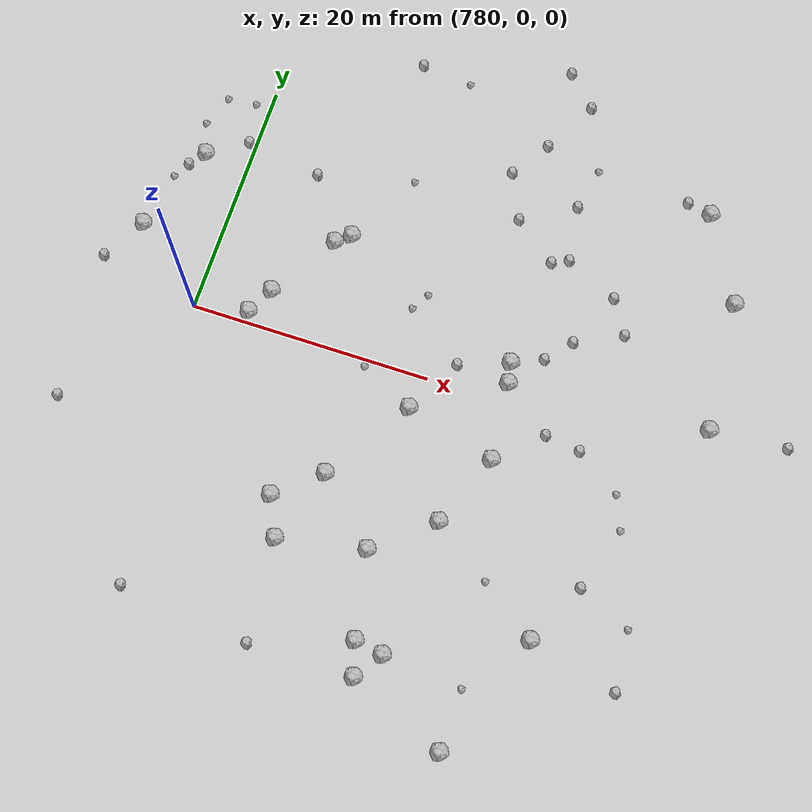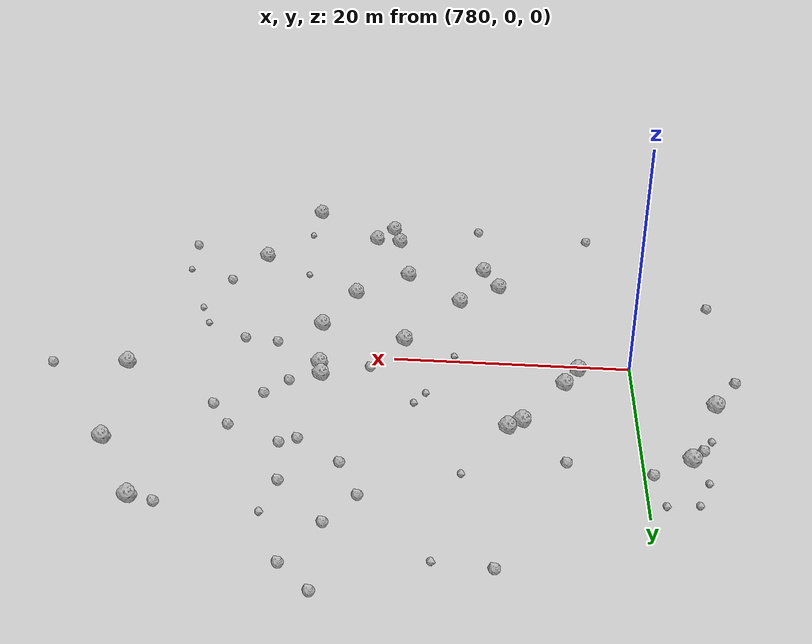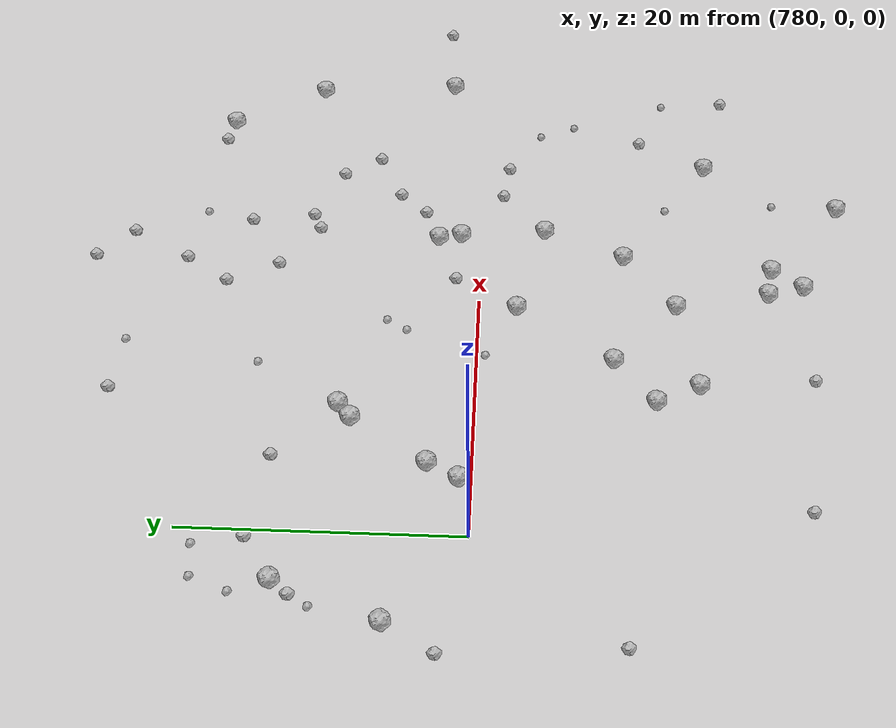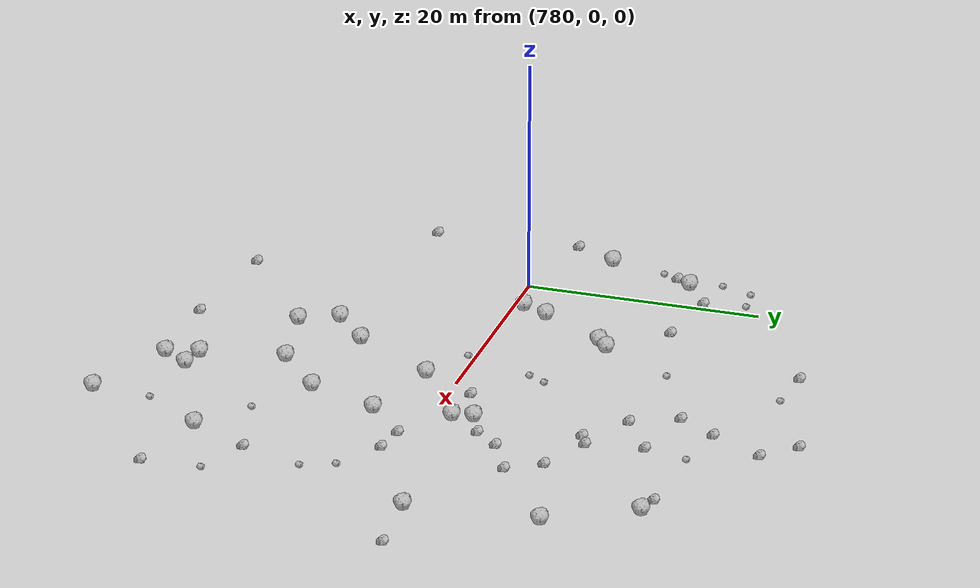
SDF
<sdf version="1.6">
 <world name="default">
  <include><uri>model://sun</uri></include>
  <model name="rock1_20_4">
   <include><uri>model://rock1</uri><pose>806.9239491747359 -4.836882166450049 0.5 0 0 0</pose></include>
  </model>
  <model name="rock1_20_5">
   <include><uri>model://rock1</uri><pose>814.045067868984 -17.55754378425918 0.5 0 0 0</pose></include>
  </model>
  <model name="rock1_20_6">
   <include><uri>model://rock1</uri><pose>794.8095961834971 -9.957706377667574 0.5 0 0 0</pose></include>
  </model>
  <model name="rock1_20_7">
   <include><uri>model://rock1</uri><pose>799.908579996473 -14.72249438884438 0.5 0 0 0</pose></include>
  </model>
  <model name="rock1_20_8">
   <include><uri>model://rock1</uri><pose>821.8094053774981 13.750609710382406 0.5 0 0 0</pose></include>
  </model>
  <model name="rock1_20_9">
   <include><uri>model://rock1</uri><pose>817.8775916085389 20.76920809648854 0.5 0 0 0</pose></include>
  </model>
  <model name="rock1_20_10">
   <include><uri>model://rock1</uri><pose>784.4583957397222 0.9118687274968451 0.5 0 0 0</pose></include>
  </model>
  <model name="rock1_20_11">
   <include><uri>model://rock1</uri><pose>802.0793599631259 -24.4196609240258 0.5 0 0 0</pose></include>
  </model>
  <model name="rock1_20_12">
   <include><uri>model://rock1</uri><pose>799.3915210571026 -2.7966268221333834 0.5 0 0 0</pose></include>
  </model>
  <model name="rock1_20_13">
   <include><uri>model://rock1</uri><pose>804.5135656276066 -10.878079184801251 0.5 0 0 0</pose></include>
  </model>
  <model name="rock1_20_14">
   <include><uri>model://rock1</uri><pose>792.7772760027677 -16.116932879623995 0.5 0 0 0</pose></include>
  </model>
  <model name="rock1_20_15">
   <include><uri>model://rock1</uri><pose>789.14797924716 8.817192618331177 0.5 0 0 0</pose></include>
  </model>
  <model name="rock1_20_16">
   <include><uri>model://rock1</uri><pose>810.0265313238124 -27.745209094083584 0.5 0 0 0</pose></include>
  </model>
  <model name="rock1_20_17">
   <include><uri>model://rock1</uri><pose>790.2927520259299 9.777707889116826 0.5 0 0 0</pose></include>
  </model>
  <model name="rock1_20_18">
   <include><uri>model://rock1</uri><pose>806.3208751578856 1.6259869594494418 0.5 0 0 0</pose></include>
  </model>
  <model name="rock1_20_19">
   <include><uri>model://rock1</uri><pose>801.2969940232844 -21.724144577217224 0.5 0 0 0</pose></include>
  </model>
  <model name="rock1_20_20">
   <include><uri>model://rock1</uri><pose>776.3286090616868 12.989286555198646 0.5 0 0 0</pose></include>
  </model>
  <model name="rock1_20_21">
   <include><uri>model://rock1</uri><pose>791.2919262519025 -12.948505029986304 0.5 0 0 0</pose></include>
  </model>
  <model name="rock1_20_22">
   <include><uri>model://rock1</uri><pose>785.6332726239657 3.193796720892692 0.5 0 0 0</pose></include>
  </model>
  <model name="rock1_20_23">
   <include><uri>model://rock1</uri><pose>805.9833636477401 3.3518292819222424 0.5 0 0 0</pose></include>
  </model>
  <model name="rock1_20_24">
   <include><uri>model://rock1</uri><pose>773.6044967687311 5.477354197778865 0.5 0 0 0</pose></include>
  </model>
  <model name="rock1_20_25">
   <include><uri>model://rock1</uri><pose>822.657518717408 2.8543098349820824 0.5 0 0 0</pose></include>
  </model>
  <model name="rock1_20_26">
   <include><uri>model://rock1</uri><pose>803.6230840872715 -22.13451564689869 0.5 0 0 0</pose></include>
  </model>
  <model name="rock2_20_0">
   <include><uri>model://rock2</uri><pose>821.3460250748253 -19.36565850028717 0.3 0 0 0</pose></include>
  </model>
  <model name="rock2_20_1">
   <include><uri>model://rock2</uri><pose>813.3395093122195 -1.9952434991586152 0.3 0 0 0</pose></include>
  </model>
  <model name="rock2_20_2">
   <include><uri>model://rock2</uri><pose>775.2784571963069 11.683659752080082 0.3 0 0 0</pose></include>
  </model>
  <model name="rock2_20_3">
   <include><uri>model://rock2</uri><pose>807.9306510420062 13.267462382914104 0.3 0 0 0</pose></include>
  </model>
  <model name="rock2_20_4">
   <include><uri>model://rock2</uri><pose>793.4511811300723 -24.515284982306444 0.3 0 0 0</pose></include>
  </model>
  <model name="rock2_20_5">
   <include><uri>model://rock2</uri><pose>810.407075900016 -1.5684812649137356 0.3 0 0 0</pose></include>
  </model>
  <model name="rock2_20_6">
   <include><uri>model://rock2</uri><pose>791.0698757089189 26.457905843220153 0.3 0 0 0</pose></include>
  </model>
  <model name="rock2_20_7">
   <include><uri>model://rock2</uri><pose>802.9443025212119 15.461672403652216 0.3 0 0 0</pose></include>
  </model>
  <model name="rock2_20_8">
   <include><uri>model://rock2</uri><pose>812.3265137600122 11.229391480554412 0.3 0 0 0</pose></include>
  </model>
  <model name="rock2_20_9">
   <include><uri>model://rock2</uri><pose>814.042305752546 8.431710828024912 0.3 0 0 0</pose></include>
  </model>
  <model name="rock2_20_10">
   <include><uri>model://rock2</uri><pose>805.7547299628084 27.041686881172247 0.3 0 0 0</pose></include>
  </model>
  <model name="rock2_20_11">
   <include><uri>model://rock2</uri><pose>815.8241403698944 21.23203654388098 0.3 0 0 0</pose></include>
  </model>
  <model name="rock2_20_12">
   <include><uri>model://rock2</uri><pose>816.5451108104699 -12.475545226925394 0.3 0 0 0</pose></include>
  </model>
  <model name="rock2_20_13">
   <include><uri>model://rock2</uri><pose>771.5056432352283 1.8661873390748127 0.3 0 0 0</pose></include>
  </model>
  <model name="rock2_20_14">
   <include><uri>model://rock2</uri><pose>772.3127533039417 -10.500456292321836 0.3 0 0 0</pose></include>
  </model>
  <model name="rock2_20_15">
   <include><uri>model://rock2</uri><pose>803.2586095652557 29.640112060971788 0.3 0 0 0</pose></include>
  </model>
  <model name="rock2_20_16">
   <include><uri>model://rock2</uri><pose>803.2957294739264 22.558951046840384 0.3 0 0 0</pose></include>
  </model>
  <model name="rock2_20_17">
   <include><uri>model://rock2</uri><pose>779.4056524271152 15.08536876061413 0.3 0 0 0</pose></include>
  </model>
  <model name="rock2_20_18">
   <include><uri>model://rock2</uri><pose>782.6381507229139 -23.299086077552076 0.3 0 0 0</pose></include>
  </model>
  <model name="rock2_20_19">
   <include><uri>model://rock2</uri><pose>801.9290630837074 1.863400738396173 0.3 0 0 0</pose></include>
  </model>
  <model name="rock2_20_20">
   <include><uri>model://rock2</uri><pose>807.230882884066 18.02346725691492 0.3 0 0 0</pose></include>
  </model>
  <model name="rock2_20_21">
   <include><uri>model://rock2</uri><pose>828.9726220535924 3.346926372223436 0.3 0 0 0</pose></include>
  </model>
  <model name="rock2_20_22">
   <include><uri>model://rock2</uri><pose>785.811887880205 14.067199114191432 0.3 0 0 0</pose></include>
  </model>
  <model name="rock2_20_23">
   <include><uri>model://rock2</uri><pose>810.2546719329903 6.554776074367645 0.3 0 0 0</pose></include>
  </model>
  <model name="rock2_20_24">
   <include><uri>model://rock2</uri><pose>806.576766293428 12.634056773833422 0.3 0 0 0</pose></include>
  </model>
  <model name="rock2_20_25">
   <include><uri>model://rock2</uri><pose>801.162140742794 19.298736359751167 0.3 0 0 0</pose></include>
  </model>
  <model name="rock2_20_26">
   <include><uri>model://rock2</uri><pose>808.4742489855728 4.469117409358127 0.3 0 0 0</pose></include>
  </model>
  <model name="rock3_20_0">
   <include><uri>model://rock3</uri><pose>820.9184840651766 -14.468696267063264 0.2 0 0 0</pose></include>
  </model>
  <model name="rock3_20_1">
   <include><uri>model://rock3</uri><pose>818.1961249883433 -7.202365284893354 0.2 0 0 0</pose></include>
  </model>
  <model name="rock3_20_2">
   <include><uri>model://rock3</uri><pose>794.8807094233149 -0.6160746880563863 0.2 0 0 0</pose></include>
  </model>
  <model name="rock3_20_3">
   <include><uri>model://rock3</uri><pose>810.1468763394724 -22.763453795882103 0.2 0 0 0</pose></include>
  </model>
  <model name="rock3_20_4">
   <include><uri>model://rock3</uri><pose>796.9751530306064 5.280500074638766 0.2 0 0 0</pose></include>
  </model>
  <model name="rock3_20_5">
   <include><uri>model://rock3</uri><pose>807.9759825948294 21.619816871433805 0.2 0 0 0</pose></include>
  </model>
  <model name="rock3_20_6">
   <include><uri>model://rock3</uri><pose>817.095316793698 -4.488347394199685 0.2 0 0 0</pose></include>
  </model>
  <model name="rock3_20_7">
   <include><uri>model://rock3</uri><pose>776.329250039302 18.30604291974788 0.2 0 0 0</pose></include>
  </model>
  <model name="rock3_20_8">
   <include><uri>model://rock3</uri><pose>809.3829310722872 -14.313337524225078 0.2 0 0 0</pose></include>
  </model>
  <model name="rock3_20_9">
   <include><uri>model://rock3</uri><pose>795.3719221623078 25.94358054417522 0.2 0 0 0</pose></include>
  </model>
  <model name="rock3_20_10">
   <include><uri>model://rock3</uri><pose>793.6843678940929 15.939613691208756 0.2 0 0 0</pose></include>
  </model>
  <model name="rock3_20_11">
   <include><uri>model://rock3</uri><pose>797.86374312877 6.782833389471357 0.2 0 0 0</pose></include>
  </model>
  <model name="rock3_20_12">
   <include><uri>model://rock3</uri><pose>774.4608862838587 10.262711012185633 0.2 0 0 0</pose></include>
  </model>
  <model name="rock3_20_13">
   <include><uri>model://rock3</uri><pose>775.3317036671698 15.624245644672392 0.2 0 0 0</pose></include>
  </model>
  <model name="rock3_20_14">
   <include><uri>model://rock3</uri><pose>778.7343547098087 18.56410955203996 0.2 0 0 0</pose></include>
  </model>
 </world>
</sdf>
